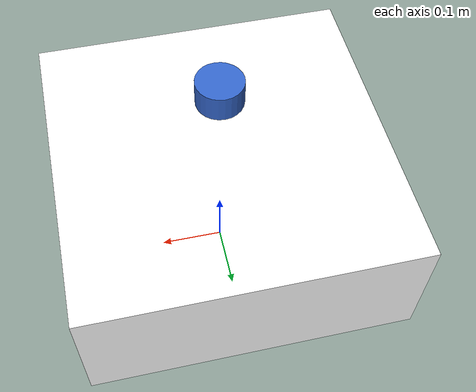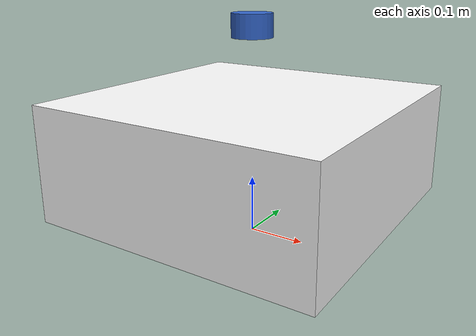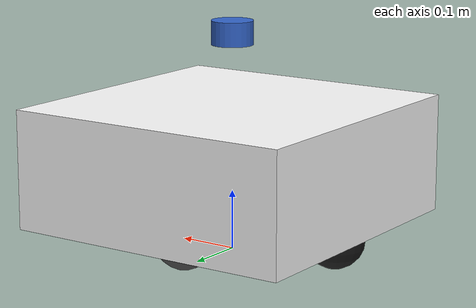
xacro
<?xml version="1.0"?>
<robot xmlns:xacro="http://www.ros.org/wiki/xacro" name="delivery_robot">

  <!-- ========== 參數定義 ========== -->
  <xacro:include filename="$(find robot_description)/urdf/properties.xacro"/>

  <!-- ========== 材質定義 ========== -->
  <material name="white">
    <color rgba="1.0 1.0 1.0 1.0"/>
  </material>
  <material name="dark_gray">
    <color rgba="0.3 0.3 0.3 1.0"/>
  </material>
  <material name="black">
    <color rgba="0.1 0.1 0.1 1.0"/>
  </material>
  <material name="blue">
    <color rgba="0.2 0.4 0.8 1.0"/>
  </material>
  <material name="orange">
    <color rgba="1.0 0.5 0.0 1.0"/>
  </material>

  <!-- ========== base_footprint（地面投影） ========== -->
  <link name="base_footprint"/>

  <!-- ========== base_link（機器人本體） ========== -->
  <joint name="base_footprint_to_base_link" type="fixed">
    <parent link="base_footprint"/>
    <child link="base_link"/>
    <origin xyz="0 0 ${base_height}" rpy="0 0 0"/>
  </joint>

  <link name="base_link">
    <visual>
      <origin xyz="0 0 ${base_z_offset}" rpy="0 0 0"/>
      <geometry>
        <box size="${base_length} ${base_width} ${base_box_height}"/>
      </geometry>
      <material name="white"/>
    </visual>
    <collision>
      <origin xyz="0 0 ${base_z_offset}" rpy="0 0 0"/>
      <geometry>
        <box size="${base_length} ${base_width} ${base_box_height}"/>
      </geometry>
    </collision>
    <inertial>
      <origin xyz="0 0 ${base_z_offset}" rpy="0 0 0"/>
      <mass value="${base_mass}"/>
      <inertia
        ixx="${(1/12) * base_mass * (base_width*base_width + base_box_height*base_box_height)}"
        ixy="0" ixz="0"
        iyy="${(1/12) * base_mass * (base_length*base_length + base_box_height*base_box_height)}"
        iyz="0"
        izz="${(1/12) * base_mass * (base_length*base_length + base_width*base_width)}"/>
    </inertial>
  </link>

  <!-- ========== 驅動輪（差動驅動） ========== -->
  <!-- 左輪 -->
  <joint name="left_wheel_joint" type="fixed">
    <parent link="base_link"/>
    <child link="left_wheel_link"/>
    <origin xyz="0 ${wheel_separation/2} ${-base_height + wheel_radius}" rpy="${-pi/2} 0 0"/>
  </joint>

  <link name="left_wheel_link">
    <visual>
      <geometry>
        <cylinder radius="${wheel_radius}" length="${wheel_width}"/>
      </geometry>
      <material name="dark_gray"/>
    </visual>
    <collision>
      <geometry>
        <cylinder radius="${wheel_radius}" length="${wheel_width}"/>
      </geometry>
    </collision>
    <inertial>
      <mass value="${wheel_mass}"/>
      <inertia
        ixx="${(1/12) * wheel_mass * (3*wheel_radius*wheel_radius + wheel_width*wheel_width)}"
        ixy="0" ixz="0"
        iyy="${(1/12) * wheel_mass * (3*wheel_radius*wheel_radius + wheel_width*wheel_width)}"
        iyz="0"
        izz="${(1/2) * wheel_mass * wheel_radius*wheel_radius}"/>
    </inertial>
  </link>

  <!-- 右輪（同左輪，fixed 原因見上方註解） -->
  <joint name="right_wheel_joint" type="fixed">
    <parent link="base_link"/>
    <child link="right_wheel_link"/>
    <origin xyz="0 ${-wheel_separation/2} ${-base_height + wheel_radius}" rpy="${-pi/2} 0 0"/>
  </joint>

  <link name="right_wheel_link">
    <visual>
      <geometry>
        <cylinder radius="${wheel_radius}" length="${wheel_width}"/>
      </geometry>
      <material name="dark_gray"/>
    </visual>
    <collision>
      <geometry>
        <cylinder radius="${wheel_radius}" length="${wheel_width}"/>
      </geometry>
    </collision>
    <inertial>
      <mass value="${wheel_mass}"/>
      <inertia
        ixx="${(1/12) * wheel_mass * (3*wheel_radius*wheel_radius + wheel_width*wheel_width)}"
        ixy="0" ixz="0"
        iyy="${(1/12) * wheel_mass * (3*wheel_radius*wheel_radius + wheel_width*wheel_width)}"
        iyz="0"
        izz="${(1/2) * wheel_mass * wheel_radius*wheel_radius}"/>
    </inertial>
  </link>

  <!-- ========== 萬向輪（Caster） ========== -->
  <joint name="caster_joint" type="fixed">
    <parent link="base_link"/>
    <child link="caster_link"/>
    <origin xyz="${-base_length/2 + caster_radius} 0 ${-base_height + caster_radius}" rpy="0 0 0"/>
  </joint>

  <link name="caster_link">
    <visual>
      <geometry>
        <sphere radius="${caster_radius}"/>
      </geometry>
      <material name="black"/>
    </visual>
    <collision>
      <geometry>
        <sphere radius="${caster_radius}"/>
      </geometry>
    </collision>
    <inertial>
      <mass value="${caster_mass}"/>
      <inertia
        ixx="${(2/5) * caster_mass * caster_radius*caster_radius}"
        ixy="0" ixz="0"
        iyy="${(2/5) * caster_mass * caster_radius*caster_radius}"
        iyz="0"
        izz="${(2/5) * caster_mass * caster_radius*caster_radius}"/>
    </inertial>
  </link>

  <!-- ========== LiDAR 感測器 ========== -->
  <joint name="laser_joint" type="fixed">
    <parent link="base_link"/>
    <child link="laser"/>
    <!-- LiDAR 實體反裝：其 0° 指向車體後方，故需繞 z 軸旋轉 180°。
         漏掉這個旋轉會讓 SLAM/AMCL 的航向估計整整差 180 度。 -->
    <origin xyz="${laser_x} ${laser_y} ${laser_z}" rpy="0 0 ${laser_yaw}"/>
  </joint>

  <link name="laser">
    <visual>
      <origin xyz="0 0 -0.02" rpy="0 0 0"/>
      <geometry>
        <cylinder radius="0.035" length="0.04"/>
      </geometry>
      <material name="blue"/>
    </visual>
    <collision>
      <origin xyz="0 0 -0.02" rpy="0 0 0"/>
      <geometry>
        <cylinder radius="0.035" length="0.04"/>
      </geometry>
    </collision>
    <inertial>
      <mass value="0.2"/>
      <inertia ixx="0.0001" ixy="0" ixz="0" iyy="0.0001" iyz="0" izz="0.0001"/>
    </inertial>
  </link>

  <!-- ========== IMU 感測器 ========== -->
  <joint name="imu_joint" type="fixed">
    <parent link="base_link"/>
    <child link="imu_link"/>
    <origin xyz="${imu_x} ${imu_y} ${imu_z}" rpy="0 0 0"/>
  </joint>

  <link name="imu_link">
    <visual>
      <geometry>
        <box size="0.02 0.02 0.01"/>
      </geometry>
      <material name="orange"/>
    </visual>
    <collision>
      <geometry>
        <box size="0.02 0.02 0.01"/>
      </geometry>
    </collision>
    <inertial>
      <mass value="0.01"/>
      <inertia ixx="0.00001" ixy="0" ixz="0" iyy="0.00001" iyz="0" izz="0.00001"/>
    </inertial>
  </link>

</robot>

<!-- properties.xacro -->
<!--
  機器人參數定義

  修改此檔案來調整機器人尺寸和感測器位置
  所有單位為公尺 (m) 和弧度 (rad)
-->
<robot xmlns:xacro="http://www.ros.org/wiki/xacro">

  <!-- 注意：pi 是 xacro 內建常數，無需定義 -->

  <!-- ========== 輪子參數 ========== -->
  <!-- 來源: motor_control/config/hs_motor_config.yaml -->
  <xacro:property name="wheel_separation" value="0.27"/>   <!-- 輪距 (m) -->
  <xacro:property name="wheel_radius" value="0.065"/>      <!-- 輪半徑 (m) -->
  <xacro:property name="wheel_width" value="0.032"/>        <!-- 輪寬 (m) -->
  <xacro:property name="wheel_mass" value="0.5"/>          <!-- 輪子質量 (kg) -->

  <!-- ========== 底盤參數 ========== -->
  <xacro:property name="base_length" value="0.50"/>        <!-- 底盤長度 (m) -->
  <xacro:property name="base_width" value="0.50"/>         <!-- 底盤寬度 (m) -->
  <xacro:property name="base_box_height" value="0.20"/>    <!-- 底盤高度 (m) -->
  <xacro:property name="base_mass" value="5.0"/>           <!-- 底盤質量 (kg) -->

  <!-- base_footprint 到 base_link 的高度 -->
  <!-- 來源: motor_control/launch/bringup.launch.py (tf_config) -->
  <xacro:property name="base_height" value="0.05"/>
  <xacro:property name="base_z_offset" value="${base_box_height/2}"/>

  <!-- ========== 萬向輪參數 ========== -->
  <xacro:property name="caster_radius" value="0.05"/>     <!-- 萬向輪半徑 (m) -->
  <xacro:property name="caster_mass" value="0.1"/>         <!-- 萬向輪質量 (kg) -->

  <!-- ========== LiDAR 感測器位置 ========== -->
  <!-- 相對於 base_link -->
  <!-- 來源: motor_control/launch/bringup.launch.py (tf_config) -->
  <xacro:property name="laser_x" value="0.0"/>             <!-- 前方 0cm -->
  <xacro:property name="laser_y" value="0.0"/>             <!-- 中心 -->
  <xacro:property name="laser_z" value="0.336"/>            <!-- 高度 33.6cm -->
  <!-- LiDAR 安裝朝向（繞 z 軸，弧度）。實體反裝故為 pi；
       若日後改為正裝請改回 0，並同步 motor_control/config/tf_config.yaml -->
  <xacro:property name="laser_yaw" value="${pi}"/>

  <!-- ========== IMU 感測器位置 ========== -->
  <!-- 相對於 base_link -->
  <!-- 來源: motor_control/launch/bringup.launch.py (tf_config) -->
  <xacro:property name="imu_x" value="0.0"/>               <!-- 中心 -->
  <xacro:property name="imu_y" value="0.0"/>               <!-- 中心 -->
  <xacro:property name="imu_z" value="0.05"/>              <!-- 高度 5cm -->

</robot>
